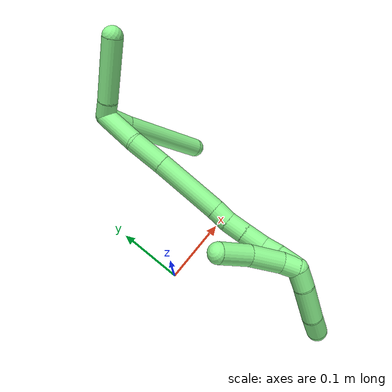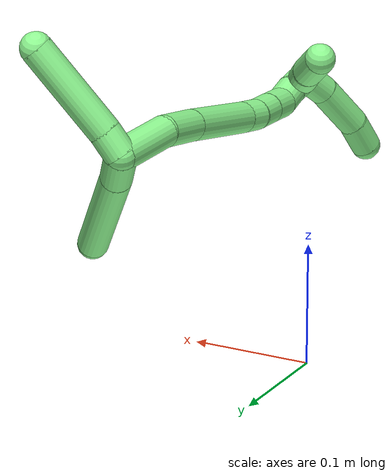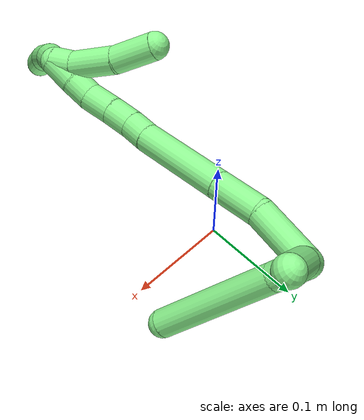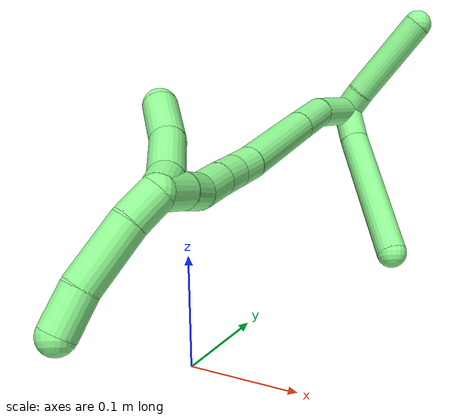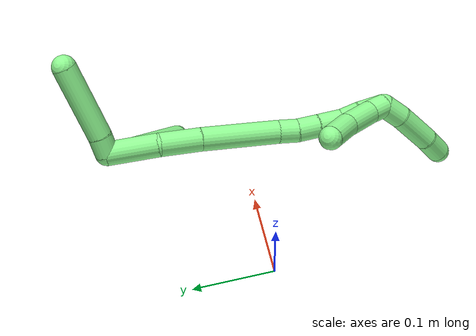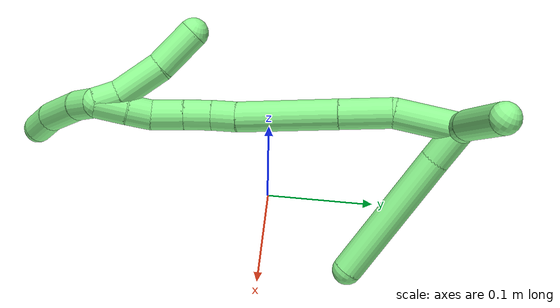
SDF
<sdf version="1.7">
 <world name="default">
  <model name="13">
   <static>0</static>
   <link name="13">
    <collision name="collision-cylinder-e_1_2_8">
     <pose>0.00144 -0.00406 -0.016095 2.89449 0.086533 0.670902</pose>
     <geometry><cylinder><radius>0.0125</radius><length>0.033323</length></cylinder></geometry>
     <surface>
      <friction><ode><mu>1.16</mu><mu2>1.16</mu2><slip1>0</slip1><slip2>0</slip2></ode></friction>
      <contact><ode><kp>1e+06</kp><kd>1</kd><max_vel>0</max_vel><min_depth>0.001</min_depth></ode></contact>
     </surface>
    </collision>
    <visual name="visual-cylinder-e_1_2_8">
     <pose>0.00144 -0.00406 -0.016095 2.89449 0.086533 0.670902</pose>
     <geometry><cylinder><radius>0.0125</radius><length>0.033323</length></cylinder></geometry>
     <material><ambient>0.564706 0.984314 0.572549 1</ambient></material>
    </visual>
    <collision name="collision-cylinder-e_2_8_6">
     <pose>0.010542 -0.025426 -0.087373 2.83769 0.131724 0.813414</pose>
     <geometry><cylinder><radius>0.0125</radius><length>0.116677</length></cylinder></geometry>
     <surface>
      <friction><ode><mu>1.16</mu><mu2>1.16</mu2><slip1>0</slip1><slip2>0</slip2></ode></friction>
      <contact><ode><kp>1e+06</kp><kd>1</kd><max_vel>0</max_vel><min_depth>0.001</min_depth></ode></contact>
     </surface>
    </collision>
    <visual name="visual-cylinder-e_2_8_6">
     <pose>0.010542 -0.025426 -0.087373 2.83769 0.131724 0.813414</pose>
     <geometry><cylinder><radius>0.0125</radius><length>0.116677</length></cylinder></geometry>
     <material><ambient>0.564706 0.984314 0.572549 1</ambient></material>
    </visual>
    <collision name="collision-cylinder-e_1_2_9">
     <pose>0.005121 -0.006276 0.006775 0.747176 0.506327 0.202139</pose>
     <geometry><cylinder><radius>0.0125</radius><length>0.02112</length></cylinder></geometry>
     <surface>
      <friction><ode><mu>1.16</mu><mu2>1.16</mu2><slip1>0</slip1><slip2>0</slip2></ode></friction>
      <contact><ode><kp>1e+06</kp><kd>1</kd><max_vel>0</max_vel><min_depth>0.001</min_depth></ode></contact>
     </surface>
    </collision>
    <visual name="visual-cylinder-e_1_2_9">
     <pose>0.005121 -0.006276 0.006775 0.747176 0.506327 0.202139</pose>
     <geometry><cylinder><radius>0.0125</radius><length>0.02112</length></cylinder></geometry>
     <material><ambient>0.564706 0.984314 0.572549 1</ambient></material>
    </visual>
    <collision name="collision-cylinder-e_2_9_5">
     <pose>0.032408 -0.033294 0.038728 0.68911 0.596816 0.219881</pose>
     <geometry><cylinder><radius>0.0125</radius><length>0.07888</length></cylinder></geometry>
     <surface>
      <friction><ode><mu>1.16</mu><mu2>1.16</mu2><slip1>0</slip1><slip2>0</slip2></ode></friction>
      <contact><ode><kp>1e+06</kp><kd>1</kd><max_vel>0</max_vel><min_depth>0.001</min_depth></ode></contact>
     </surface>
    </collision>
    <visual name="visual-cylinder-e_2_9_5">
     <pose>0.032408 -0.033294 0.038728 0.68911 0.596816 0.219881</pose>
     <geometry><cylinder><radius>0.0125</radius><length>0.07888</length></cylinder></geometry>
     <material><ambient>0.564706 0.984314 0.572549 1</ambient></material>
    </visual>
    <collision name="collision-cylinder-e_1_2_10">
     <pose>-0.018246 -0.018227 -0.008502 2.00723 -0.736792 -1.08963</pose>
     <geometry><cylinder><radius>0.0125</radius><length>0.054312</length></cylinder></geometry>
     <surface>
      <friction><ode><mu>1.16</mu><mu2>1.16</mu2><slip1>0</slip1><slip2>0</slip2></ode></friction>
      <contact><ode><kp>1e+06</kp><kd>1</kd><max_vel>0</max_vel><min_depth>0.001</min_depth></ode></contact>
     </surface>
    </collision>
    <visual name="visual-cylinder-e_1_2_10">
     <pose>-0.018246 -0.018227 -0.008502 2.00723 -0.736792 -1.08963</pose>
     <geometry><cylinder><radius>0.0125</radius><length>0.054312</length></cylinder></geometry>
     <material><ambient>0.564706 0.984314 0.572549 1</ambient></material>
    </visual>
    <collision name="collision-cylinder-e_2_10_11">
     <pose>-0.048741 -0.049773 -0.029007 2.30433 -0.599327 -1.21394</pose>
     <geometry><cylinder><radius>0.0125</radius><length>0.043428</length></cylinder></geometry>
     <surface>
      <friction><ode><mu>1.16</mu><mu2>1.16</mu2><slip1>0</slip1><slip2>0</slip2></ode></friction>
      <contact><ode><kp>1e+06</kp><kd>1</kd><max_vel>0</max_vel><min_depth>0.001</min_depth></ode></contact>
     </surface>
    </collision>
    <visual name="visual-cylinder-e_2_10_11">
     <pose>-0.048741 -0.049773 -0.029007 2.30433 -0.599327 -1.21394</pose>
     <geometry><cylinder><radius>0.0125</radius><length>0.043428</length></cylinder></geometry>
     <material><ambient>0.564706 0.984314 0.572549 1</ambient></material>
    </visual>
    <collision name="collision-cylinder-e_3_11_12">
     <pose>-0.085126 -0.087579 -0.064859 2.34294 -0.614814 -1.28995</pose>
     <geometry><cylinder><radius>0.0125</radius><length>0.08369</length></cylinder></geometry>
     <surface>
      <friction><ode><mu>1.16</mu><mu2>1.16</mu2><slip1>0</slip1><slip2>0</slip2></ode></friction>
      <contact><ode><kp>1e+06</kp><kd>1</kd><max_vel>0</max_vel><min_depth>0.001</min_depth></ode></contact>
     </surface>
    </collision>
    <visual name="visual-cylinder-e_3_11_12">
     <pose>-0.085126 -0.087579 -0.064859 2.34294 -0.614814 -1.28995</pose>
     <geometry><cylinder><radius>0.0125</radius><length>0.08369</length></cylinder></geometry>
     <material><ambient>0.564706 0.984314 0.572549 1</ambient></material>
    </visual>
    <collision name="collision-cylinder-e_4_12_13">
     <pose>-0.116028 -0.118091 -0.094054 2.29681 -0.698669 -1.36223</pose>
     <geometry><cylinder><radius>0.0125</radius><length>0.021035</length></cylinder></geometry>
     <surface>
      <friction><ode><mu>1.16</mu><mu2>1.16</mu2><slip1>0</slip1><slip2>0</slip2></ode></friction>
      <contact><ode><kp>1e+06</kp><kd>1</kd><max_vel>0</max_vel><min_depth>0.001</min_depth></ode></contact>
     </surface>
    </collision>
    <visual name="visual-cylinder-e_4_12_13">
     <pose>-0.116028 -0.118091 -0.094054 2.29681 -0.698669 -1.36223</pose>
     <geometry><cylinder><radius>0.0125</radius><length>0.021035</length></cylinder></geometry>
     <material><ambient>0.564706 0.984314 0.572549 1</ambient></material>
    </visual>
    <collision name="collision-cylinder-e_5_13_14">
     <pose>-0.12917 -0.132126 -0.104905 2.17272 -0.58059 -1.03259</pose>
     <geometry><cylinder><radius>0.0125</radius><length>0.023253</length></cylinder></geometry>
     <surface>
      <friction><ode><mu>1.16</mu><mu2>1.16</mu2><slip1>0</slip1><slip2>0</slip2></ode></friction>
      <contact><ode><kp>1e+06</kp><kd>1</kd><max_vel>0</max_vel><min_depth>0.001</min_depth></ode></contact>
     </surface>
    </collision>
    <visual name="visual-cylinder-e_5_13_14">
     <pose>-0.12917 -0.132126 -0.104905 2.17272 -0.58059 -1.03259</pose>
     <geometry><cylinder><radius>0.0125</radius><length>0.023253</length></cylinder></geometry>
     <material><ambient>0.564706 0.984314 0.572549 1</ambient></material>
    </visual>
    <collision name="collision-cylinder-e_6_14_15">
     <pose>-0.142811 -0.149488 -0.11724 2.20177 -0.560282 -1.03086</pose>
     <geometry><cylinder><radius>0.0125</radius><length>0.027337</length></cylinder></geometry>
     <surface>
      <friction><ode><mu>1.16</mu><mu2>1.16</mu2><slip1>0</slip1><slip2>0</slip2></ode></friction>
      <contact><ode><kp>1e+06</kp><kd>1</kd><max_vel>0</max_vel><min_depth>0.001</min_depth></ode></contact>
     </surface>
    </collision>
    <visual name="visual-cylinder-e_6_14_15">
     <pose>-0.142811 -0.149488 -0.11724 2.20177 -0.560282 -1.03086</pose>
     <geometry><cylinder><radius>0.0125</radius><length>0.027337</length></cylinder></geometry>
     <material><ambient>0.564706 0.984314 0.572549 1</ambient></material>
    </visual>
    <collision name="collision-cylinder-e_7_15_16">
     <pose>-0.155556 -0.167329 -0.12623 1.81982 -0.559039 -0.707291</pose>
     <geometry><cylinder><radius>0.0125</radius><length>0.02067</length></cylinder></geometry>
     <surface>
      <friction><ode><mu>1.16</mu><mu2>1.16</mu2><slip1>0</slip1><slip2>0</slip2></ode></friction>
      <contact><ode><kp>1e+06</kp><kd>1</kd><max_vel>0</max_vel><min_depth>0.001</min_depth></ode></contact>
     </surface>
    </collision>
    <visual name="visual-cylinder-e_7_15_16">
     <pose>-0.155556 -0.167329 -0.12623 1.81982 -0.559039 -0.707291</pose>
     <geometry><cylinder><radius>0.0125</radius><length>0.02067</length></cylinder></geometry>
     <material><ambient>0.564706 0.984314 0.572549 1</ambient></material>
    </visual>
    <collision name="collision-cylinder-e_8_16_1">
     <pose>-0.168843 -0.185906 -0.131544 1.87394 -0.63616 -0.842343</pose>
     <geometry><cylinder><radius>0.0125</radius><length>0.026276</length></cylinder></geometry>
     <surface>
      <friction><ode><mu>1.16</mu><mu2>1.16</mu2><slip1>0</slip1><slip2>0</slip2></ode></friction>
      <contact><ode><kp>1e+06</kp><kd>1</kd><max_vel>0</max_vel><min_depth>0.001</min_depth></ode></contact>
     </surface>
    </collision>
    <visual name="visual-cylinder-e_8_16_1">
     <pose>-0.168843 -0.185906 -0.131544 1.87394 -0.63616 -0.842343</pose>
     <geometry><cylinder><radius>0.0125</radius><length>0.026276</length></cylinder></geometry>
     <material><ambient>0.564706 0.984314 0.572549 1</ambient></material>
    </visual>
    <collision name="collision-cylinder-e_1_1_17">
     <pose>-0.184956 -0.196023 -0.14395 3.13818 -0.73175 -3.13269</pose>
     <geometry><cylinder><radius>0.0125</radius><length>0.024868</length></cylinder></geometry>
     <surface>
      <friction><ode><mu>1.16</mu><mu2>1.16</mu2><slip1>0</slip1><slip2>0</slip2></ode></friction>
      <contact><ode><kp>1e+06</kp><kd>1</kd><max_vel>0</max_vel><min_depth>0.001</min_depth></ode></contact>
     </surface>
    </collision>
    <visual name="visual-cylinder-e_1_1_17">
     <pose>-0.184956 -0.196023 -0.14395 3.13818 -0.73175 -3.13269</pose>
     <geometry><cylinder><radius>0.0125</radius><length>0.024868</length></cylinder></geometry>
     <material><ambient>0.564706 0.984314 0.572549 1</ambient></material>
    </visual>
    <collision name="collision-cylinder-e_2_17_18">
     <pose>-0.206541 -0.194078 -0.172197 -3.0379 -0.607486 2.81347</pose>
     <geometry><cylinder><radius>0.0125</radius><length>0.046521</length></cylinder></geometry>
     <surface>
      <friction><ode><mu>1.16</mu><mu2>1.16</mu2><slip1>0</slip1><slip2>0</slip2></ode></friction>
      <contact><ode><kp>1e+06</kp><kd>1</kd><max_vel>0</max_vel><min_depth>0.001</min_depth></ode></contact>
     </surface>
    </collision>
    <visual name="visual-cylinder-e_2_17_18">
     <pose>-0.206541 -0.194078 -0.172197 -3.0379 -0.607486 2.81347</pose>
     <geometry><cylinder><radius>0.0125</radius><length>0.046521</length></cylinder></geometry>
     <material><ambient>0.564706 0.984314 0.572549 1</ambient></material>
    </visual>
    <collision name="collision-cylinder-e_3_18_4">
     <pose>-0.22591 -0.190481 -0.204035 -3.01607 -0.439893 2.59354</pose>
     <geometry><cylinder><radius>0.0125</radius><length>0.028612</length></cylinder></geometry>
     <surface>
      <friction><ode><mu>1.16</mu><mu2>1.16</mu2><slip1>0</slip1><slip2>0</slip2></ode></friction>
      <contact><ode><kp>1e+06</kp><kd>1</kd><max_vel>0</max_vel><min_depth>0.001</min_depth></ode></contact>
     </surface>
    </collision>
    <visual name="visual-cylinder-e_3_18_4">
     <pose>-0.22591 -0.190481 -0.204035 -3.01607 -0.439893 2.59354</pose>
     <geometry><cylinder><radius>0.0125</radius><length>0.028612</length></cylinder></geometry>
     <material><ambient>0.564706 0.984314 0.572549 1</ambient></material>
    </visual>
    <collision name="collision-cylinder-e_1_1_19">
     <pose>-0.174198 -0.188539 -0.128184 -0.852441 0.242686 -0.110624</pose>
     <geometry><cylinder><radius>0.0125</radius><length>0.020396</length></cylinder></geometry>
     <surface>
      <friction><ode><mu>1.16</mu><mu2>1.16</mu2><slip1>0</slip1><slip2>0</slip2></ode></friction>
      <contact><ode><kp>1e+06</kp><kd>1</kd><max_vel>0</max_vel><min_depth>0.001</min_depth></ode></contact>
     </surface>
    </collision>
    <visual name="visual-cylinder-e_1_1_19">
     <pose>-0.174198 -0.188539 -0.128184 -0.852441 0.242686 -0.110624</pose>
     <geometry><cylinder><radius>0.0125</radius><length>0.020396</length></cylinder></geometry>
     <material><ambient>0.564706 0.984314 0.572549 1</ambient></material>
    </visual>
    <collision name="collision-cylinder-e_2_19_20">
     <pose>-0.170937 -0.168729 -0.10527 -0.645771 0.039441 -0.013198</pose>
     <geometry><cylinder><radius>0.0125</radius><length>0.041098</length></cylinder></geometry>
     <surface>
      <friction><ode><mu>1.16</mu><mu2>1.16</mu2><slip1>0</slip1><slip2>0</slip2></ode></friction>
      <contact><ode><kp>1e+06</kp><kd>1</kd><max_vel>0</max_vel><min_depth>0.001</min_depth></ode></contact>
     </surface>
    </collision>
    <visual name="visual-cylinder-e_2_19_20">
     <pose>-0.170937 -0.168729 -0.10527 -0.645771 0.039441 -0.013198</pose>
     <geometry><cylinder><radius>0.0125</radius><length>0.041098</length></cylinder></geometry>
     <material><ambient>0.564706 0.984314 0.572549 1</ambient></material>
    </visual>
    <collision name="collision-cylinder-e_3_20_3">
     <pose>-0.172547 -0.146496 -0.072523 -0.54337 -0.126068 0.035162</pose>
     <geometry><cylinder><radius>0.0125</radius><length>0.038506</length></cylinder></geometry>
     <surface>
      <friction><ode><mu>1.16</mu><mu2>1.16</mu2><slip1>0</slip1><slip2>0</slip2></ode></friction>
      <contact><ode><kp>1e+06</kp><kd>1</kd><max_vel>0</max_vel><min_depth>0.001</min_depth></ode></contact>
     </surface>
    </collision>
    <visual name="visual-cylinder-e_3_20_3">
     <pose>-0.172547 -0.146496 -0.072523 -0.54337 -0.126068 0.035162</pose>
     <geometry><cylinder><radius>0.0125</radius><length>0.038506</length></cylinder></geometry>
     <material><ambient>0.564706 0.984314 0.572549 1</ambient></material>
    </visual>
    <collision name="collision-sphere-3">
     <pose>-0.174968 -0.136621 -0.056173 0 -0 0</pose>
     <geometry><sphere><radius>0.0125</radius></sphere></geometry>
     <surface>
      <friction><ode><mu>1.16</mu><mu2>1.16</mu2><slip1>0</slip1><slip2>0</slip2></ode></friction>
      <contact><ode><kp>1e+06</kp><kd>1</kd><max_vel>0</max_vel><min_depth>0.001</min_depth></ode></contact>
     </surface>
    </collision>
    <visual name="visual-sphere-3">
     <pose>-0.174968 -0.136621 -0.056173 0 -0 0</pose>
     <geometry><sphere><radius>0.0125</radius></sphere></geometry>
     <material><ambient>0.564706 0.984314 0.572549 1</ambient></material>
    </visual>
    <collision name="collision-sphere-20">
     <pose>-0.170126 -0.156372 -0.088872 0 -0 0</pose>
     <geometry><sphere><radius>0.0125</radius></sphere></geometry>
     <surface>
      <friction><ode><mu>1.16</mu><mu2>1.16</mu2><slip1>0</slip1><slip2>0</slip2></ode></friction>
      <contact><ode><kp>1e+06</kp><kd>1</kd><max_vel>0</max_vel><min_depth>0.001</min_depth></ode></contact>
     </surface>
    </collision>
    <visual name="visual-sphere-20">
     <pose>-0.170126 -0.156372 -0.088872 0 -0 0</pose>
     <geometry><sphere><radius>0.0125</radius></sphere></geometry>
     <material><ambient>0.564706 0.984314 0.572549 1</ambient></material>
    </visual>
    <collision name="collision-sphere-19">
     <pose>-0.171747 -0.181086 -0.121669 0 -0 0</pose>
     <geometry><sphere><radius>0.0125</radius></sphere></geometry>
     <surface>
      <friction><ode><mu>1.16</mu><mu2>1.16</mu2><slip1>0</slip1><slip2>0</slip2></ode></friction>
      <contact><ode><kp>1e+06</kp><kd>1</kd><max_vel>0</max_vel><min_depth>0.001</min_depth></ode></contact>
     </surface>
    </collision>
    <visual name="visual-sphere-19">
     <pose>-0.171747 -0.181086 -0.121669 0 -0 0</pose>
     <geometry><sphere><radius>0.0125</radius></sphere></geometry>
     <material><ambient>0.564706 0.984314 0.572549 1</ambient></material>
    </visual>
    <collision name="collision-sphere-10">
     <pose>-0.036493 -0.036454 -0.017003 0 -0 0</pose>
     <geometry><sphere><radius>0.0125</radius></sphere></geometry>
     <surface>
      <friction><ode><mu>1.16</mu><mu2>1.16</mu2><slip1>0</slip1><slip2>0</slip2></ode></friction>
      <contact><ode><kp>1e+06</kp><kd>1</kd><max_vel>0</max_vel><min_depth>0.001</min_depth></ode></contact>
     </surface>
    </collision>
    <visual name="visual-sphere-10">
     <pose>-0.036493 -0.036454 -0.017003 0 -0 0</pose>
     <geometry><sphere><radius>0.0125</radius></sphere></geometry>
     <material><ambient>0.564706 0.984314 0.572549 1</ambient></material>
    </visual>
    <collision name="collision-sphere-5">
     <pose>0.054574 -0.054037 0.063906 0 -0 0</pose>
     <geometry><sphere><radius>0.0125</radius></sphere></geometry>
     <surface>
      <friction><ode><mu>1.16</mu><mu2>1.16</mu2><slip1>0</slip1><slip2>0</slip2></ode></friction>
      <contact><ode><kp>1e+06</kp><kd>1</kd><max_vel>0</max_vel><min_depth>0.001</min_depth></ode></contact>
     </surface>
    </collision>
    <visual name="visual-sphere-5">
     <pose>0.054574 -0.054037 0.063906 0 -0 0</pose>
     <geometry><sphere><radius>0.0125</radius></sphere></geometry>
     <material><ambient>0.564706 0.984314 0.572549 1</ambient></material>
    </visual>
    <collision name="collision-sphere-6">
     <pose>0.018205 -0.042733 -0.142556 0 -0 0</pose>
     <geometry><sphere><radius>0.0125</radius></sphere></geometry>
     <surface>
      <friction><ode><mu>1.16</mu><mu2>1.16</mu2><slip1>0</slip1><slip2>0</slip2></ode></friction>
      <contact><ode><kp>1e+06</kp><kd>1</kd><max_vel>0</max_vel><min_depth>0.001</min_depth></ode></contact>
     </surface>
    </collision>
    <visual name="visual-sphere-6">
     <pose>0.018205 -0.042733 -0.142556 0 -0 0</pose>
     <geometry><sphere><radius>0.0125</radius></sphere></geometry>
     <material><ambient>0.564706 0.984314 0.572549 1</ambient></material>
    </visual>
    <collision name="collision-sphere-9">
     <pose>0.010242 -0.012551 0.01355 0 -0 0</pose>
     <geometry><sphere><radius>0.0125</radius></sphere></geometry>
     <surface>
      <friction><ode><mu>1.16</mu><mu2>1.16</mu2><slip1>0</slip1><slip2>0</slip2></ode></friction>
      <contact><ode><kp>1e+06</kp><kd>1</kd><max_vel>0</max_vel><min_depth>0.001</min_depth></ode></contact>
     </surface>
    </collision>
    <visual name="visual-sphere-9">
     <pose>0.010242 -0.012551 0.01355 0 -0 0</pose>
     <geometry><sphere><radius>0.0125</radius></sphere></geometry>
     <material><ambient>0.564706 0.984314 0.572549 1</ambient></material>
    </visual>
    <collision name="collision-sphere-2">
     <geometry><sphere><radius>0.0125</radius></sphere></geometry>
     <surface>
      <friction><ode><mu>1.16</mu><mu2>1.16</mu2><slip1>0</slip1><slip2>0</slip2></ode></friction>
      <contact><ode><kp>1e+06</kp><kd>1</kd><max_vel>0</max_vel><min_depth>0.001</min_depth></ode></contact>
     </surface>
    </collision>
    <visual name="visual-sphere-2">
     <geometry><sphere><radius>0.0125</radius></sphere></geometry>
     <material><ambient>0.564706 0.984314 0.572549 1</ambient></material>
    </visual>
    <collision name="collision-sphere-8">
     <pose>0.00288 -0.00812 -0.03219 0 -0 0</pose>
     <geometry><sphere><radius>0.0125</radius></sphere></geometry>
     <surface>
      <friction><ode><mu>1.16</mu><mu2>1.16</mu2><slip1>0</slip1><slip2>0</slip2></ode></friction>
      <contact><ode><kp>1e+06</kp><kd>1</kd><max_vel>0</max_vel><min_depth>0.001</min_depth></ode></contact>
     </surface>
    </collision>
    <visual name="visual-sphere-8">
     <pose>0.00288 -0.00812 -0.03219 0 -0 0</pose>
     <geometry><sphere><radius>0.0125</radius></sphere></geometry>
     <material><ambient>0.564706 0.984314 0.572549 1</ambient></material>
    </visual>
    <collision name="collision-sphere-11">
     <pose>-0.06099 -0.063091 -0.041011 0 -0 0</pose>
     <geometry><sphere><radius>0.0125</radius></sphere></geometry>
     <surface>
      <friction><ode><mu>1.16</mu><mu2>1.16</mu2><slip1>0</slip1><slip2>0</slip2></ode></friction>
      <contact><ode><kp>1e+06</kp><kd>1</kd><max_vel>0</max_vel><min_depth>0.001</min_depth></ode></contact>
     </surface>
    </collision>
    <visual name="visual-sphere-11">
     <pose>-0.06099 -0.063091 -0.041011 0 -0 0</pose>
     <geometry><sphere><radius>0.0125</radius></sphere></geometry>
     <material><ambient>0.564706 0.984314 0.572549 1</ambient></material>
    </visual>
    <collision name="collision-sphere-12">
     <pose>-0.109263 -0.112068 -0.088707 0 -0 0</pose>
     <geometry><sphere><radius>0.0125</radius></sphere></geometry>
     <surface>
      <friction><ode><mu>1.16</mu><mu2>1.16</mu2><slip1>0</slip1><slip2>0</slip2></ode></friction>
      <contact><ode><kp>1e+06</kp><kd>1</kd><max_vel>0</max_vel><min_depth>0.001</min_depth></ode></contact>
     </surface>
    </collision>
    <visual name="visual-sphere-12">
     <pose>-0.109263 -0.112068 -0.088707 0 -0 0</pose>
     <geometry><sphere><radius>0.0125</radius></sphere></geometry>
     <material><ambient>0.564706 0.984314 0.572549 1</ambient></material>
    </visual>
    <collision name="collision-sphere-13">
     <pose>-0.122793 -0.124113 -0.0994 0 -0 0</pose>
     <geometry><sphere><radius>0.0125</radius></sphere></geometry>
     <surface>
      <friction><ode><mu>1.16</mu><mu2>1.16</mu2><slip1>0</slip1><slip2>0</slip2></ode></friction>
      <contact><ode><kp>1e+06</kp><kd>1</kd><max_vel>0</max_vel><min_depth>0.001</min_depth></ode></contact>
     </surface>
    </collision>
    <visual name="visual-sphere-13">
     <pose>-0.122793 -0.124113 -0.0994 0 -0 0</pose>
     <geometry><sphere><radius>0.0125</radius></sphere></geometry>
     <material><ambient>0.564706 0.984314 0.572549 1</ambient></material>
    </visual>
    <collision name="collision-sphere-14">
     <pose>-0.135548 -0.140139 -0.11041 0 -0 0</pose>
     <geometry><sphere><radius>0.0125</radius></sphere></geometry>
     <surface>
      <friction><ode><mu>1.16</mu><mu2>1.16</mu2><slip1>0</slip1><slip2>0</slip2></ode></friction>
      <contact><ode><kp>1e+06</kp><kd>1</kd><max_vel>0</max_vel><min_depth>0.001</min_depth></ode></contact>
     </surface>
    </collision>
    <visual name="visual-sphere-14">
     <pose>-0.135548 -0.140139 -0.11041 0 -0 0</pose>
     <geometry><sphere><radius>0.0125</radius></sphere></geometry>
     <material><ambient>0.564706 0.984314 0.572549 1</ambient></material>
    </visual>
    <collision name="collision-sphere-15">
     <pose>-0.150075 -0.158837 -0.124071 0 -0 0</pose>
     <geometry><sphere><radius>0.0125</radius></sphere></geometry>
     <surface>
      <friction><ode><mu>1.16</mu><mu2>1.16</mu2><slip1>0</slip1><slip2>0</slip2></ode></friction>
      <contact><ode><kp>1e+06</kp><kd>1</kd><max_vel>0</max_vel><min_depth>0.001</min_depth></ode></contact>
     </surface>
    </collision>
    <visual name="visual-sphere-15">
     <pose>-0.150075 -0.158837 -0.124071 0 -0 0</pose>
     <geometry><sphere><radius>0.0125</radius></sphere></geometry>
     <material><ambient>0.564706 0.984314 0.572549 1</ambient></material>
    </visual>
    <collision name="collision-sphere-16">
     <pose>-0.161038 -0.17582 -0.12839 0 -0 0</pose>
     <geometry><sphere><radius>0.0125</radius></sphere></geometry>
     <surface>
      <friction><ode><mu>1.16</mu><mu2>1.16</mu2><slip1>0</slip1><slip2>0</slip2></ode></friction>
      <contact><ode><kp>1e+06</kp><kd>1</kd><max_vel>0</max_vel><min_depth>0.001</min_depth></ode></contact>
     </surface>
    </collision>
    <visual name="visual-sphere-16">
     <pose>-0.161038 -0.17582 -0.12839 0 -0 0</pose>
     <geometry><sphere><radius>0.0125</radius></sphere></geometry>
     <material><ambient>0.564706 0.984314 0.572549 1</ambient></material>
    </visual>
    <collision name="collision-sphere-1">
     <pose>-0.176648 -0.195992 -0.134699 0 -0 0</pose>
     <geometry><sphere><radius>0.0125</radius></sphere></geometry>
     <surface>
      <friction><ode><mu>1.16</mu><mu2>1.16</mu2><slip1>0</slip1><slip2>0</slip2></ode></friction>
      <contact><ode><kp>1e+06</kp><kd>1</kd><max_vel>0</max_vel><min_depth>0.001</min_depth></ode></contact>
     </surface>
    </collision>
    <visual name="visual-sphere-1">
     <pose>-0.176648 -0.195992 -0.134699 0 -0 0</pose>
     <geometry><sphere><radius>0.0125</radius></sphere></geometry>
     <material><ambient>0.564706 0.984314 0.572549 1</ambient></material>
    </visual>
    <collision name="collision-sphere-18">
     <pose>-0.219818 -0.192101 -0.191193 0 -0 0</pose>
     <geometry><sphere><radius>0.0125</radius></sphere></geometry>
     <surface>
      <friction><ode><mu>1.16</mu><mu2>1.16</mu2><slip1>0</slip1><slip2>0</slip2></ode></friction>
      <contact><ode><kp>1e+06</kp><kd>1</kd><max_vel>0</max_vel><min_depth>0.001</min_depth></ode></contact>
     </surface>
    </collision>
    <visual name="visual-sphere-18">
     <pose>-0.219818 -0.192101 -0.191193 0 -0 0</pose>
     <geometry><sphere><radius>0.0125</radius></sphere></geometry>
     <material><ambient>0.564706 0.984314 0.572549 1</ambient></material>
    </visual>
    <collision name="collision-sphere-17">
     <pose>-0.193264 -0.196055 -0.153201 0 -0 0</pose>
     <geometry><sphere><radius>0.0125</radius></sphere></geometry>
     <surface>
      <friction><ode><mu>1.16</mu><mu2>1.16</mu2><slip1>0</slip1><slip2>0</slip2></ode></friction>
      <contact><ode><kp>1e+06</kp><kd>1</kd><max_vel>0</max_vel><min_depth>0.001</min_depth></ode></contact>
     </surface>
    </collision>
    <visual name="visual-sphere-17">
     <pose>-0.193264 -0.196055 -0.153201 0 -0 0</pose>
     <geometry><sphere><radius>0.0125</radius></sphere></geometry>
     <material><ambient>0.564706 0.984314 0.572549 1</ambient></material>
    </visual>
    <collision name="collision-sphere-4">
     <pose>-0.232002 -0.18886 -0.216877 0 -0 0</pose>
     <geometry><sphere><radius>0.0125</radius></sphere></geometry>
     <surface>
      <friction><ode><mu>1.16</mu><mu2>1.16</mu2><slip1>0</slip1><slip2>0</slip2></ode></friction>
      <contact><ode><kp>1e+06</kp><kd>1</kd><max_vel>0</max_vel><min_depth>0.001</min_depth></ode></contact>
     </surface>
    </collision>
    <visual name="visual-sphere-4">
     <pose>-0.232002 -0.18886 -0.216877 0 -0 0</pose>
     <geometry><sphere><radius>0.0125</radius></sphere></geometry>
     <material><ambient>0.564706 0.984314 0.572549 1</ambient></material>
    </visual>
    <inertial>
     <pose>-0.081578 -0.09347 -0.074043 0 -0 0</pose>
     <mass>0.75</mass>
     <inertia>
      <ixx>0.000198</ixx>
      <ixy>0</ixy>
      <ixz>0</ixz>
      <iyy>2.6e-05</iyy>
      <iyz>0</iyz>
      <izz>0.000108</izz>
     </inertia>
    </inertial>
   </link>
   <pose>0.075591 0.159506 0.205245 -0.514143 0.056754 0.629423</pose>
  </model>
 </world>
</sdf>
